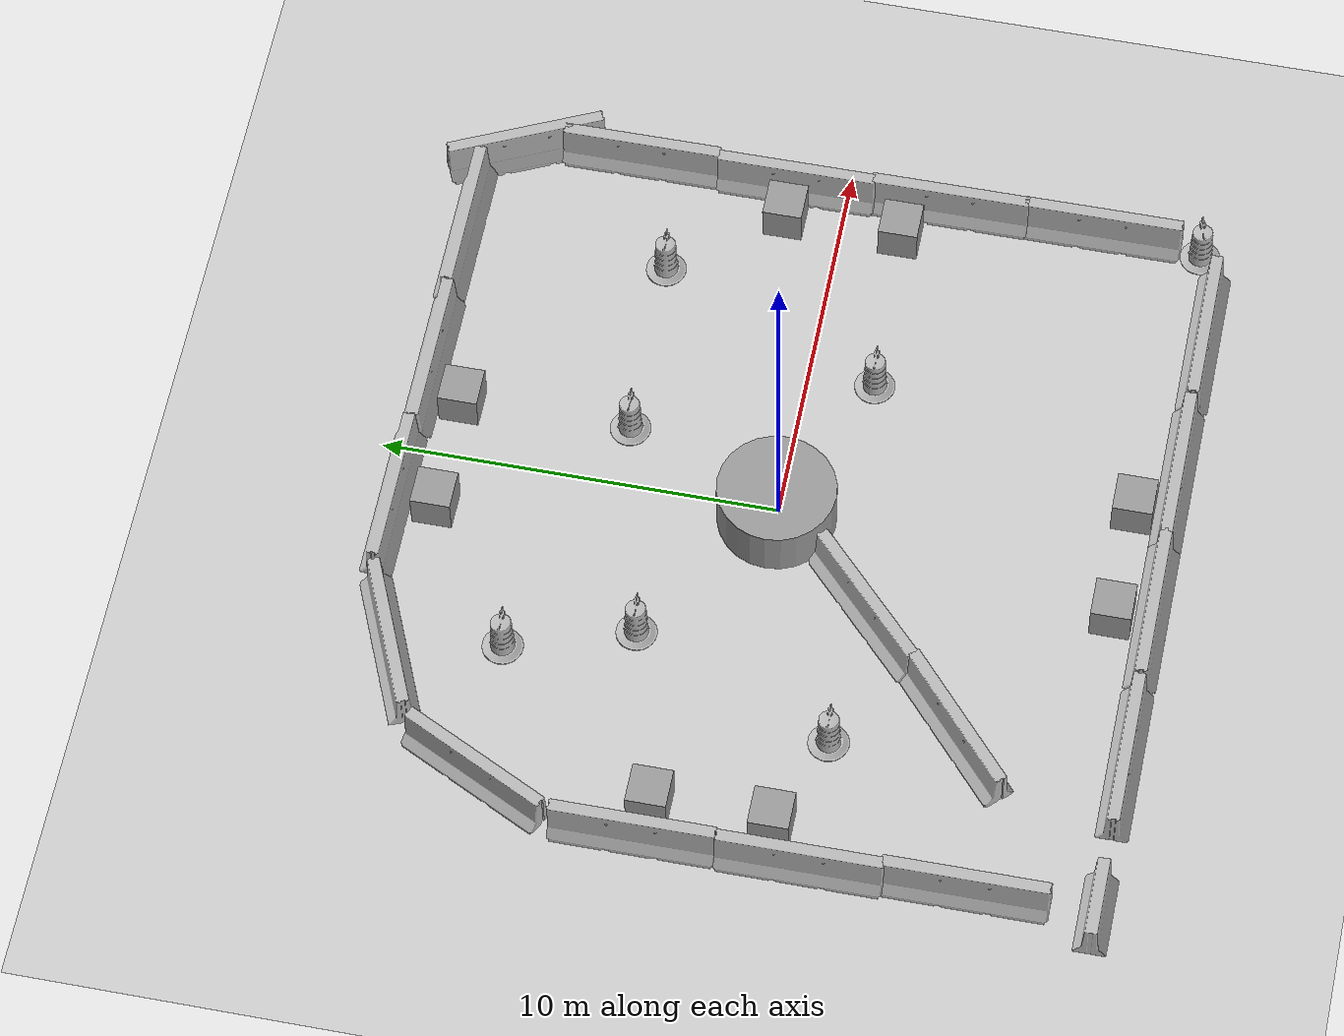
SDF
<sdf version="1.6">
 <world name="default">
  <light name="sun" type="directional">
   <pose>0 0 10 0 -0 0</pose>
   <diffuse>0.8 0.8 0.8 1</diffuse>
   <specular>0.2 0.2 0.2 1</specular>
   <attenuation>
    <range>1000</range>
    <constant>0.9</constant>
    <linear>0.01</linear>
    <quadratic>0.001</quadratic>
   </attenuation>
   <direction>-0.5 0.1 -0.9</direction>
  </light>
  <model name="ground_plane">
   <static>1</static>
   <link name="link">
    <collision name="collision">
     <geometry><plane><normal>0 0 1</normal><size>100 100</size></plane></geometry>
     <surface><friction><ode><mu>100</mu><mu2>50</mu2></ode></friction></surface>
    </collision>
    <visual name="visual">
     <cast_shadows>0</cast_shadows>
     <geometry><plane><normal>0 0 1</normal><size>100 100</size></plane></geometry>
     <material>
      <script><uri>file://media/materials/scripts/gazebo.material</uri><name>Gazebo/Grey</name></script>
     </material>
    </visual>
   </link>
  </model>
  <gravity>0 0 -9.8</gravity>
  <magnetic_field>6e-06 2.3e-05 -4.2e-05</magnetic_field>
  <atmosphere type="adiabatic"/>
  <physics name="default_physics" default="0" type="ode">
   <max_step_size>0.001</max_step_size>
   <real_time_factor>1</real_time_factor>
   <real_time_update_rate>1000</real_time_update_rate>
  </physics>
  <scene><ambient>0.4 0.4 0.4 1</ambient><background>0.7 0.7 0.7 1</background><shadows>1</shadows></scene>
  <spherical_coordinates>
   <surface_model>EARTH_WGS84</surface_model>
   <latitude_deg>0</latitude_deg>
   <longitude_deg>0</longitude_deg>
   <elevation>0</elevation>
   <heading_deg>0</heading_deg>
  </spherical_coordinates>
  <model name="jersey_barrier">
   <static>1</static>
   <link name="link">
    <visual name="visual">
     <geometry>
      <mesh><uri>model://jersey_barrier/meshes/jersey_barrier.dae</uri><scale>1 1 1</scale></mesh>
     </geometry>
    </visual>
    <collision name="upright">
     <pose>0 0 0.5715 0 -0 0</pose>
     <geometry><box><size>4.06542 0.3063 1.143</size></box></geometry>
    </collision>
    <collision name="base">
     <pose>0 0 0.032258 0 -0 0</pose>
     <geometry><box><size>4.06542 0.8107 0.064516</size></box></geometry>
    </collision>
    <collision name="base2">
     <pose>0 0 0.1 0 -0 0</pose>
     <geometry><box><size>4.06542 0.65 0.1</size></box></geometry>
    </collision>
    <collision name="base3">
     <pose>0 0 0.2 0 -0 0</pose>
     <geometry><box><size>4.06542 0.5 0.1</size></box></geometry>
    </collision>
    <collision name="left-angle">
     <pose>0 -0.224 0.2401 0.9 -0 0</pose>
     <geometry><box><size>4.06542 0.5 0.064516</size></box></geometry>
    </collision>
    <collision name="right-angle">
     <pose>0 0.224 0.2401 -0.9 0 0</pose>
     <geometry><box><size>4.06542 0.5 0.064516</size></box></geometry>
    </collision>
   </link>
   <pose>-5.69058 8.51039 0 0 -0 0.403569</pose>
  </model>
  <model name="jersey_barrier_clone">
   <static>1</static>
   <link name="link">
    <visual name="visual">
     <geometry>
      <mesh><uri>model://jersey_barrier/meshes/jersey_barrier.dae</uri><scale>1 1 1</scale></mesh>
     </geometry>
    </visual>
    <collision name="upright">
     <pose>0 0 0.5715 0 -0 0</pose>
     <geometry><box><size>4.06542 0.3063 1.143</size></box></geometry>
    </collision>
    <collision name="base">
     <pose>0 0 0.032258 0 -0 0</pose>
     <geometry><box><size>4.06542 0.8107 0.064516</size></box></geometry>
    </collision>
    <collision name="base2">
     <pose>0 0 0.1 0 -0 0</pose>
     <geometry><box><size>4.06542 0.65 0.1</size></box></geometry>
    </collision>
    <collision name="base3">
     <pose>0 0 0.2 0 -0 0</pose>
     <geometry><box><size>4.06542 0.5 0.1</size></box></geometry>
    </collision>
    <collision name="left-angle">
     <pose>0 -0.224 0.2401 0.9 -0 0</pose>
     <geometry><box><size>4.06542 0.5 0.064516</size></box></geometry>
    </collision>
    <collision name="right-angle">
     <pose>0 0.224 0.2401 -0.9 0 0</pose>
     <geometry><box><size>4.06542 0.5 0.064516</size></box></geometry>
    </collision>
   </link>
   <pose>-1.65987 9.36075 0 0 -0 0</pose>
  </model>
  <model name="jersey_barrier_clone_0">
   <static>1</static>
   <link name="link">
    <visual name="visual">
     <geometry>
      <mesh><uri>model://jersey_barrier/meshes/jersey_barrier.dae</uri><scale>1 1 1</scale></mesh>
     </geometry>
    </visual>
    <collision name="upright">
     <pose>0 0 0.5715 0 -0 0</pose>
     <geometry><box><size>4.06542 0.3063 1.143</size></box></geometry>
    </collision>
    <collision name="base">
     <pose>0 0 0.032258 0 -0 0</pose>
     <geometry><box><size>4.06542 0.8107 0.064516</size></box></geometry>
    </collision>
    <collision name="base2">
     <pose>0 0 0.1 0 -0 0</pose>
     <geometry><box><size>4.06542 0.65 0.1</size></box></geometry>
    </collision>
    <collision name="base3">
     <pose>0 0 0.2 0 -0 0</pose>
     <geometry><box><size>4.06542 0.5 0.1</size></box></geometry>
    </collision>
    <collision name="left-angle">
     <pose>0 -0.224 0.2401 0.9 -0 0</pose>
     <geometry><box><size>4.06542 0.5 0.064516</size></box></geometry>
    </collision>
    <collision name="right-angle">
     <pose>0 0.224 0.2401 -0.9 0 0</pose>
     <geometry><box><size>4.06542 0.5 0.064516</size></box></geometry>
    </collision>
   </link>
   <pose>2.39773 9.29085 0 0 -0 0</pose>
  </model>
  <model name="jersey_barrier_clone_1">
   <static>1</static>
   <link name="link">
    <visual name="visual">
     <geometry>
      <mesh><uri>model://jersey_barrier/meshes/jersey_barrier.dae</uri><scale>1 1 1</scale></mesh>
     </geometry>
    </visual>
    <collision name="upright">
     <pose>0 0 0.5715 0 -0 0</pose>
     <geometry><box><size>4.06542 0.3063 1.143</size></box></geometry>
    </collision>
    <collision name="base">
     <pose>0 0 0.032258 0 -0 0</pose>
     <geometry><box><size>4.06542 0.8107 0.064516</size></box></geometry>
    </collision>
    <collision name="base2">
     <pose>0 0 0.1 0 -0 0</pose>
     <geometry><box><size>4.06542 0.65 0.1</size></box></geometry>
    </collision>
    <collision name="base3">
     <pose>0 0 0.2 0 -0 0</pose>
     <geometry><box><size>4.06542 0.5 0.1</size></box></geometry>
    </collision>
    <collision name="left-angle">
     <pose>0 -0.224 0.2401 0.9 -0 0</pose>
     <geometry><box><size>4.06542 0.5 0.064516</size></box></geometry>
    </collision>
    <collision name="right-angle">
     <pose>0 0.224 0.2401 -0.9 0 0</pose>
     <geometry><box><size>4.06542 0.5 0.064516</size></box></geometry>
    </collision>
   </link>
   <pose>6.45464 9.33993 0 0 -0 0</pose>
  </model>
  <model name="jersey_barrier_clone_3">
   <static>1</static>
   <link name="link">
    <visual name="visual">
     <geometry>
      <mesh><uri>model://jersey_barrier/meshes/jersey_barrier.dae</uri><scale>1 1 1</scale></mesh>
     </geometry>
    </visual>
    <collision name="upright">
     <pose>0 0 0.5715 0 -0 0</pose>
     <geometry><box><size>4.06542 0.3063 1.143</size></box></geometry>
    </collision>
    <collision name="base">
     <pose>0 0 0.032258 0 -0 0</pose>
     <geometry><box><size>4.06542 0.8107 0.064516</size></box></geometry>
    </collision>
    <collision name="base2">
     <pose>0 0 0.1 0 -0 0</pose>
     <geometry><box><size>4.06542 0.65 0.1</size></box></geometry>
    </collision>
    <collision name="base3">
     <pose>0 0 0.2 0 -0 0</pose>
     <geometry><box><size>4.06542 0.5 0.1</size></box></geometry>
    </collision>
    <collision name="left-angle">
     <pose>0 -0.224 0.2401 0.9 -0 0</pose>
     <geometry><box><size>4.06542 0.5 0.064516</size></box></geometry>
    </collision>
    <collision name="right-angle">
     <pose>0 0.224 0.2401 -0.9 0 0</pose>
     <geometry><box><size>4.06542 0.5 0.064516</size></box></geometry>
    </collision>
   </link>
   <pose>9.44656 5.35522 0 0 0 -1.56865</pose>
  </model>
  <model name="jersey_barrier_clone_3_clone">
   <static>1</static>
   <link name="link">
    <visual name="visual">
     <geometry>
      <mesh><uri>model://jersey_barrier/meshes/jersey_barrier.dae</uri><scale>1 1 1</scale></mesh>
     </geometry>
    </visual>
    <collision name="upright">
     <pose>0 0 0.5715 0 -0 0</pose>
     <geometry><box><size>4.06542 0.3063 1.143</size></box></geometry>
    </collision>
    <collision name="base">
     <pose>0 0 0.032258 0 -0 0</pose>
     <geometry><box><size>4.06542 0.8107 0.064516</size></box></geometry>
    </collision>
    <collision name="base2">
     <pose>0 0 0.1 0 -0 0</pose>
     <geometry><box><size>4.06542 0.65 0.1</size></box></geometry>
    </collision>
    <collision name="base3">
     <pose>0 0 0.2 0 -0 0</pose>
     <geometry><box><size>4.06542 0.5 0.1</size></box></geometry>
    </collision>
    <collision name="left-angle">
     <pose>0 -0.224 0.2401 0.9 -0 0</pose>
     <geometry><box><size>4.06542 0.5 0.064516</size></box></geometry>
    </collision>
    <collision name="right-angle">
     <pose>0 0.224 0.2401 -0.9 0 0</pose>
     <geometry><box><size>4.06542 0.5 0.064516</size></box></geometry>
    </collision>
   </link>
   <pose>9.3727 1.33119 0 0 0 -1.56865</pose>
  </model>
  <model name="jersey_barrier_clone_3_clone_0">
   <static>1</static>
   <link name="link">
    <visual name="visual">
     <geometry>
      <mesh><uri>model://jersey_barrier/meshes/jersey_barrier.dae</uri><scale>1 1 1</scale></mesh>
     </geometry>
    </visual>
    <collision name="upright">
     <pose>0 0 0.5715 0 -0 0</pose>
     <geometry><box><size>4.06542 0.3063 1.143</size></box></geometry>
    </collision>
    <collision name="base">
     <pose>0 0 0.032258 0 -0 0</pose>
     <geometry><box><size>4.06542 0.8107 0.064516</size></box></geometry>
    </collision>
    <collision name="base2">
     <pose>0 0 0.1 0 -0 0</pose>
     <geometry><box><size>4.06542 0.65 0.1</size></box></geometry>
    </collision>
    <collision name="base3">
     <pose>0 0 0.2 0 -0 0</pose>
     <geometry><box><size>4.06542 0.5 0.1</size></box></geometry>
    </collision>
    <collision name="left-angle">
     <pose>0 -0.224 0.2401 0.9 -0 0</pose>
     <geometry><box><size>4.06542 0.5 0.064516</size></box></geometry>
    </collision>
    <collision name="right-angle">
     <pose>0 0.224 0.2401 -0.9 0 0</pose>
     <geometry><box><size>4.06542 0.5 0.064516</size></box></geometry>
    </collision>
   </link>
   <pose>9.4315 -2.6268 0 0 0 -1.56865</pose>
  </model>
  <model name="jersey_barrier_clone_3_clone_1">
   <static>1</static>
   <link name="link">
    <visual name="visual">
     <geometry>
      <mesh><uri>model://jersey_barrier/meshes/jersey_barrier.dae</uri><scale>1 1 1</scale></mesh>
     </geometry>
    </visual>
    <collision name="upright">
     <pose>0 0 0.5715 0 -0 0</pose>
     <geometry><box><size>4.06542 0.3063 1.143</size></box></geometry>
    </collision>
    <collision name="base">
     <pose>0 0 0.032258 0 -0 0</pose>
     <geometry><box><size>4.06542 0.8107 0.064516</size></box></geometry>
    </collision>
    <collision name="base2">
     <pose>0 0 0.1 0 -0 0</pose>
     <geometry><box><size>4.06542 0.65 0.1</size></box></geometry>
    </collision>
    <collision name="base3">
     <pose>0 0 0.2 0 -0 0</pose>
     <geometry><box><size>4.06542 0.5 0.1</size></box></geometry>
    </collision>
    <collision name="left-angle">
     <pose>0 -0.224 0.2401 0.9 -0 0</pose>
     <geometry><box><size>4.06542 0.5 0.064516</size></box></geometry>
    </collision>
    <collision name="right-angle">
     <pose>0 0.224 0.2401 -0.9 0 0</pose>
     <geometry><box><size>4.06542 0.5 0.064516</size></box></geometry>
    </collision>
   </link>
   <pose>9.44969 -6.53485 0 0 0 -1.56865</pose>
  </model>
  <model name="jersey_barrier_clone_2_clone">
   <static>1</static>
   <link name="link">
    <visual name="visual">
     <geometry>
      <mesh><uri>model://jersey_barrier/meshes/jersey_barrier.dae</uri><scale>1 1 1</scale></mesh>
     </geometry>
    </visual>
    <collision name="upright">
     <pose>0 0 0.5715 0 -0 0</pose>
     <geometry><box><size>4.06542 0.3063 1.143</size></box></geometry>
    </collision>
    <collision name="base">
     <pose>0 0 0.032258 0 -0 0</pose>
     <geometry><box><size>4.06542 0.8107 0.064516</size></box></geometry>
    </collision>
    <collision name="base2">
     <pose>0 0 0.1 0 -0 0</pose>
     <geometry><box><size>4.06542 0.65 0.1</size></box></geometry>
    </collision>
    <collision name="base3">
     <pose>0 0 0.2 0 -0 0</pose>
     <geometry><box><size>4.06542 0.5 0.1</size></box></geometry>
    </collision>
    <collision name="left-angle">
     <pose>0 -0.224 0.2401 0.9 -0 0</pose>
     <geometry><box><size>4.06542 0.5 0.064516</size></box></geometry>
    </collision>
    <collision name="right-angle">
     <pose>0 0.224 0.2401 -0.9 0 0</pose>
     <geometry><box><size>4.06542 0.5 0.064516</size></box></geometry>
    </collision>
   </link>
   <pose>6.70657 -9.54347 0 0 -0 0</pose>
  </model>
  <model name="jersey_barrier_clone_2_clone_0">
   <static>1</static>
   <link name="link">
    <visual name="visual">
     <geometry>
      <mesh><uri>model://jersey_barrier/meshes/jersey_barrier.dae</uri><scale>1 1 1</scale></mesh>
     </geometry>
    </visual>
    <collision name="upright">
     <pose>0 0 0.5715 0 -0 0</pose>
     <geometry><box><size>4.06542 0.3063 1.143</size></box></geometry>
    </collision>
    <collision name="base">
     <pose>0 0 0.032258 0 -0 0</pose>
     <geometry><box><size>4.06542 0.8107 0.064516</size></box></geometry>
    </collision>
    <collision name="base2">
     <pose>0 0 0.1 0 -0 0</pose>
     <geometry><box><size>4.06542 0.65 0.1</size></box></geometry>
    </collision>
    <collision name="base3">
     <pose>0 0 0.2 0 -0 0</pose>
     <geometry><box><size>4.06542 0.5 0.1</size></box></geometry>
    </collision>
    <collision name="left-angle">
     <pose>0 -0.224 0.2401 0.9 -0 0</pose>
     <geometry><box><size>4.06542 0.5 0.064516</size></box></geometry>
    </collision>
    <collision name="right-angle">
     <pose>0 0.224 0.2401 -0.9 0 0</pose>
     <geometry><box><size>4.06542 0.5 0.064516</size></box></geometry>
    </collision>
   </link>
   <pose>2.59616 -9.50928 0 0 -0 0</pose>
  </model>
  <model name="jersey_barrier_clone_2_clone_1">
   <static>1</static>
   <link name="link">
    <visual name="visual">
     <geometry>
      <mesh><uri>model://jersey_barrier/meshes/jersey_barrier.dae</uri><scale>1 1 1</scale></mesh>
     </geometry>
    </visual>
    <collision name="upright">
     <pose>0 0 0.5715 0 -0 0</pose>
     <geometry><box><size>4.06542 0.3063 1.143</size></box></geometry>
    </collision>
    <collision name="base">
     <pose>0 0 0.032258 0 -0 0</pose>
     <geometry><box><size>4.06542 0.8107 0.064516</size></box></geometry>
    </collision>
    <collision name="base2">
     <pose>0 0 0.1 0 -0 0</pose>
     <geometry><box><size>4.06542 0.65 0.1</size></box></geometry>
    </collision>
    <collision name="base3">
     <pose>0 0 0.2 0 -0 0</pose>
     <geometry><box><size>4.06542 0.5 0.1</size></box></geometry>
    </collision>
    <collision name="left-angle">
     <pose>0 -0.224 0.2401 0.9 -0 0</pose>
     <geometry><box><size>4.06542 0.5 0.064516</size></box></geometry>
    </collision>
    <collision name="right-angle">
     <pose>0 0.224 0.2401 -0.9 0 0</pose>
     <geometry><box><size>4.06542 0.5 0.064516</size></box></geometry>
    </collision>
   </link>
   <pose>-1.33414 -9.50852 0 0 -0 0</pose>
  </model>
  <model name="jersey_barrier_clone_2_clone_2">
   <static>1</static>
   <link name="link">
    <visual name="visual">
     <geometry>
      <mesh><uri>model://jersey_barrier/meshes/jersey_barrier.dae</uri><scale>1 1 1</scale></mesh>
     </geometry>
    </visual>
    <collision name="upright">
     <pose>0 0 0.5715 0 -0 0</pose>
     <geometry><box><size>4.06542 0.3063 1.143</size></box></geometry>
    </collision>
    <collision name="base">
     <pose>0 0 0.032258 0 -0 0</pose>
     <geometry><box><size>4.06542 0.8107 0.064516</size></box></geometry>
    </collision>
    <collision name="base2">
     <pose>0 0 0.1 0 -0 0</pose>
     <geometry><box><size>4.06542 0.65 0.1</size></box></geometry>
    </collision>
    <collision name="base3">
     <pose>0 0 0.2 0 -0 0</pose>
     <geometry><box><size>4.06542 0.5 0.1</size></box></geometry>
    </collision>
    <collision name="left-angle">
     <pose>0 -0.224 0.2401 0.9 -0 0</pose>
     <geometry><box><size>4.06542 0.5 0.064516</size></box></geometry>
    </collision>
    <collision name="right-angle">
     <pose>0 0.224 0.2401 -0.9 0 0</pose>
     <geometry><box><size>4.06542 0.5 0.064516</size></box></geometry>
    </collision>
   </link>
   <pose>-5.44605 -9.49634 0 0 -0 0</pose>
  </model>
  <model name="jersey_barrier_clone_3_clone_1_clone">
   <static>1</static>
   <link name="link">
    <visual name="visual">
     <geometry>
      <mesh><uri>model://jersey_barrier/meshes/jersey_barrier.dae</uri><scale>1 1 1</scale></mesh>
     </geometry>
    </visual>
    <collision name="upright">
     <pose>0 0 0.5715 0 -0 0</pose>
     <geometry><box><size>4.06542 0.3063 1.143</size></box></geometry>
    </collision>
    <collision name="base">
     <pose>0 0 0.032258 0 -0 0</pose>
     <geometry><box><size>4.06542 0.8107 0.064516</size></box></geometry>
    </collision>
    <collision name="base2">
     <pose>0 0 0.1 0 -0 0</pose>
     <geometry><box><size>4.06542 0.65 0.1</size></box></geometry>
    </collision>
    <collision name="base3">
     <pose>0 0 0.2 0 -0 0</pose>
     <geometry><box><size>4.06542 0.5 0.1</size></box></geometry>
    </collision>
    <collision name="left-angle">
     <pose>0 -0.224 0.2401 0.9 -0 0</pose>
     <geometry><box><size>4.06542 0.5 0.064516</size></box></geometry>
    </collision>
    <collision name="right-angle">
     <pose>0 0.224 0.2401 -0.9 0 0</pose>
     <geometry><box><size>4.06542 0.5 0.064516</size></box></geometry>
    </collision>
   </link>
   <pose>-9.54289 -6.33149 0 0 0 -1.56865</pose>
  </model>
  <model name="jersey_barrier_clone_3_clone_1_clone_0">
   <static>1</static>
   <link name="link">
    <visual name="visual">
     <geometry>
      <mesh><uri>model://jersey_barrier/meshes/jersey_barrier.dae</uri><scale>1 1 1</scale></mesh>
     </geometry>
    </visual>
    <collision name="upright">
     <pose>0 0 0.5715 0 -0 0</pose>
     <geometry><box><size>4.06542 0.3063 1.143</size></box></geometry>
    </collision>
    <collision name="base">
     <pose>0 0 0.032258 0 -0 0</pose>
     <geometry><box><size>4.06542 0.8107 0.064516</size></box></geometry>
    </collision>
    <collision name="base2">
     <pose>0 0 0.1 0 -0 0</pose>
     <geometry><box><size>4.06542 0.65 0.1</size></box></geometry>
    </collision>
    <collision name="base3">
     <pose>0 0 0.2 0 -0 0</pose>
     <geometry><box><size>4.06542 0.5 0.1</size></box></geometry>
    </collision>
    <collision name="left-angle">
     <pose>0 -0.224 0.2401 0.9 -0 0</pose>
     <geometry><box><size>4.06542 0.5 0.064516</size></box></geometry>
    </collision>
    <collision name="right-angle">
     <pose>0 0.224 0.2401 -0.9 0 0</pose>
     <geometry><box><size>4.06542 0.5 0.064516</size></box></geometry>
    </collision>
   </link>
   <pose>-9.6221 -2.35336 0 0 0 -1.56865</pose>
  </model>
  <model name="jersey_barrier_clone_3_clone_1_clone_1">
   <static>1</static>
   <link name="link">
    <visual name="visual">
     <geometry>
      <mesh><uri>model://jersey_barrier/meshes/jersey_barrier.dae</uri><scale>1 1 1</scale></mesh>
     </geometry>
    </visual>
    <collision name="upright">
     <pose>0 0 0.5715 0 -0 0</pose>
     <geometry><box><size>4.06542 0.3063 1.143</size></box></geometry>
    </collision>
    <collision name="base">
     <pose>0 0 0.032258 0 -0 0</pose>
     <geometry><box><size>4.06542 0.8107 0.064516</size></box></geometry>
    </collision>
    <collision name="base2">
     <pose>0 0 0.1 0 -0 0</pose>
     <geometry><box><size>4.06542 0.65 0.1</size></box></geometry>
    </collision>
    <collision name="base3">
     <pose>0 0 0.2 0 -0 0</pose>
     <geometry><box><size>4.06542 0.5 0.1</size></box></geometry>
    </collision>
    <collision name="left-angle">
     <pose>0 -0.224 0.2401 0.9 -0 0</pose>
     <geometry><box><size>4.06542 0.5 0.064516</size></box></geometry>
    </collision>
    <collision name="right-angle">
     <pose>0 0.224 0.2401 -0.9 0 0</pose>
     <geometry><box><size>4.06542 0.5 0.064516</size></box></geometry>
    </collision>
   </link>
   <pose>-9.58952 1.69745 0 0 0 -1.56865</pose>
  </model>
  <model name="jersey_barrier_clone_3_clone_1_clone_2">
   <static>1</static>
   <link name="link">
    <visual name="visual">
     <geometry>
      <mesh><uri>model://jersey_barrier/meshes/jersey_barrier.dae</uri><scale>1 1 1</scale></mesh>
     </geometry>
    </visual>
    <collision name="upright">
     <pose>0 0 0.5715 0 -0 0</pose>
     <geometry><box><size>4.06542 0.3063 1.143</size></box></geometry>
    </collision>
    <collision name="base">
     <pose>0 0 0.032258 0 -0 0</pose>
     <geometry><box><size>4.06542 0.8107 0.064516</size></box></geometry>
    </collision>
    <collision name="base2">
     <pose>0 0 0.1 0 -0 0</pose>
     <geometry><box><size>4.06542 0.65 0.1</size></box></geometry>
    </collision>
    <collision name="base3">
     <pose>0 0 0.2 0 -0 0</pose>
     <geometry><box><size>4.06542 0.5 0.1</size></box></geometry>
    </collision>
    <collision name="left-angle">
     <pose>0 -0.224 0.2401 0.9 -0 0</pose>
     <geometry><box><size>4.06542 0.5 0.064516</size></box></geometry>
    </collision>
    <collision name="right-angle">
     <pose>0 0.224 0.2401 -0.9 0 0</pose>
     <geometry><box><size>4.06542 0.5 0.064516</size></box></geometry>
    </collision>
   </link>
   <pose>-8.67609 5.71375 0 0 0 -2.03081</pose>
  </model>
  <model name="Construction Barrel">
   <link name="link">
    <inertial>
     <pose>0 0 0.4 0 -0 0</pose>
     <mass>1000</mass>
     <inertia><ixx>51.2096</ixx><iyy>51.2096</iyy><izz>25</izz><ixy>0</ixy><ixz>0</ixz><iyz>0</iyz></inertia>
    </inertial>
    <collision name="collision">
     <geometry>
      <mesh><uri>model://construction_barrel/meshes/construction_barrel.dae</uri><scale>1 1 1</scale></mesh>
     </geometry>
    </collision>
    <visual name="visual">
     <geometry>
      <mesh><uri>model://construction_barrel/meshes/construction_barrel.dae</uri><scale>1 1 1</scale></mesh>
     </geometry>
    </visual>
   </link>
   <pose>1.64169 4.07159 -1e-06 3e-06 -3e-06 -0.001112</pose>
  </model>
  <model name="Construction Barrel_0">
   <link name="link">
    <inertial>
     <pose>0 0 0.4 0 -0 0</pose>
     <mass>1000</mass>
     <inertia><ixx>51.2096</ixx><iyy>51.2096</iyy><izz>25</izz><ixy>0</ixy><ixz>0</ixz><iyz>0</iyz></inertia>
    </inertial>
    <collision name="collision">
     <geometry>
      <mesh><uri>model://construction_barrel/meshes/construction_barrel.dae</uri><scale>1 1 1</scale></mesh>
     </geometry>
    </collision>
    <visual name="visual">
     <geometry>
      <mesh><uri>model://construction_barrel/meshes/construction_barrel.dae</uri><scale>1 1 1</scale></mesh>
     </geometry>
    </visual>
   </link>
   <pose>-4.02184 2.75409 -2e-06 1e-06 -4e-06 -0.001176</pose>
  </model>
  <model name="Construction Barrel_1">
   <link name="link">
    <inertial>
     <pose>0 0 0.4 0 -0 0</pose>
     <mass>1000</mass>
     <inertia><ixx>51.2096</ixx><iyy>51.2096</iyy><izz>25</izz><ixy>0</ixy><ixz>0</ixz><iyz>0</iyz></inertia>
    </inertial>
    <collision name="collision">
     <geometry>
      <mesh><uri>model://construction_barrel/meshes/construction_barrel.dae</uri><scale>1 1 1</scale></mesh>
     </geometry>
    </collision>
    <visual name="visual">
     <geometry>
      <mesh><uri>model://construction_barrel/meshes/construction_barrel.dae</uri><scale>1 1 1</scale></mesh>
     </geometry>
    </visual>
   </link>
   <pose>3.99786 -1.67236 -2e-06 1e-06 -4e-06 -0.001176</pose>
  </model>
  <model name="Construction Barrel_2">
   <link name="link">
    <inertial>
     <pose>0 0 0.4 0 -0 0</pose>
     <mass>1000</mass>
     <inertia><ixx>51.2096</ixx><iyy>51.2096</iyy><izz>25</izz><ixy>0</ixy><ixz>0</ixz><iyz>0</iyz></inertia>
    </inertial>
    <collision name="collision">
     <geometry>
      <mesh><uri>model://construction_barrel/meshes/construction_barrel.dae</uri><scale>1 1 1</scale></mesh>
     </geometry>
    </collision>
    <visual name="visual">
     <geometry>
      <mesh><uri>model://construction_barrel/meshes/construction_barrel.dae</uri><scale>1 1 1</scale></mesh>
     </geometry>
    </visual>
   </link>
   <pose>-5.01473 5.87222 0 1e-06 1e-06 -0.001166</pose>
  </model>
  <model name="Construction Barrel_3">
   <link name="link">
    <inertial>
     <pose>0 0 0.4 0 -0 0</pose>
     <mass>1000</mass>
     <inertia><ixx>51.2096</ixx><iyy>51.2096</iyy><izz>25</izz><ixy>0</ixy><ixz>0</ixz><iyz>0</iyz></inertia>
    </inertial>
    <collision name="collision">
     <geometry>
      <mesh><uri>model://construction_barrel/meshes/construction_barrel.dae</uri><scale>1 1 1</scale></mesh>
     </geometry>
    </collision>
    <visual name="visual">
     <geometry>
      <mesh><uri>model://construction_barrel/meshes/construction_barrel.dae</uri><scale>1 1 1</scale></mesh>
     </geometry>
    </visual>
   </link>
   <pose>9.32403 -9.078 -2e-06 -1.1e-05 -5e-06 0.268435</pose>
  </model>
  <model name="Construction Barrel_4">
   <link name="link">
    <inertial>
     <pose>0 0 0.4 0 -0 0</pose>
     <mass>1000</mass>
     <inertia><ixx>51.2096</ixx><iyy>51.2096</iyy><izz>25</izz><ixy>0</ixy><ixz>0</ixz><iyz>0</iyz></inertia>
    </inertial>
    <collision name="collision">
     <geometry>
      <mesh><uri>model://construction_barrel/meshes/construction_barrel.dae</uri><scale>1 1 1</scale></mesh>
     </geometry>
    </collision>
    <visual name="visual">
     <geometry>
      <mesh><uri>model://construction_barrel/meshes/construction_barrel.dae</uri><scale>1 1 1</scale></mesh>
     </geometry>
    </visual>
   </link>
   <pose>-6.13223 -2.39908 -2e-06 2e-06 7e-06 -0.001189</pose>
  </model>
  <model name="Construction Barrel_5">
   <link name="link">
    <inertial>
     <pose>0 0 0.4 0 -0 0</pose>
     <mass>1000</mass>
     <inertia><ixx>51.2096</ixx><iyy>51.2096</iyy><izz>25</izz><ixy>0</ixy><ixz>0</ixz><iyz>0</iyz></inertia>
    </inertial>
    <collision name="collision">
     <geometry>
      <mesh><uri>model://construction_barrel/meshes/construction_barrel.dae</uri><scale>1 1 1</scale></mesh>
     </geometry>
    </collision>
    <visual name="visual">
     <geometry>
      <mesh><uri>model://construction_barrel/meshes/construction_barrel.dae</uri><scale>1 1 1</scale></mesh>
     </geometry>
    </visual>
   </link>
   <pose>6.42785 4.13703 -3e-06 -7e-06 -6e-06 -0.001195</pose>
  </model>
  <model name="unit_box_0">
   <pose>8.43013 -1.51835 0.499995 1e-05 -0 0</pose>
   <link name="link">
    <inertial>
     <mass>1</mass>
     <inertia>
      <ixx>0.166667</ixx>
      <ixy>0</ixy>
      <ixz>0</ixz>
      <iyy>0.166667</iyy>
      <iyz>0</iyz>
      <izz>0.166667</izz>
     </inertia>
    </inertial>
    <collision name="collision"><geometry><box><size>1 1 1</size></box></geometry></collision>
    <visual name="visual">
     <geometry><box><size>1 1 1</size></box></geometry>
     <material>
      <script><name>Gazebo/Grey</name><uri>file://media/materials/scripts/gazebo.material</uri></script>
     </material>
    </visual>
   </link>
  </model>
  <model name="unit_box_1">
   <pose>8.44764 1.45301 0.499995 1e-05 -0 0</pose>
   <link name="link">
    <inertial>
     <mass>1</mass>
     <inertia>
      <ixx>0.166667</ixx>
      <ixy>0</ixy>
      <ixz>0</ixz>
      <iyy>0.166667</iyy>
      <iyz>0</iyz>
      <izz>0.166667</izz>
     </inertia>
    </inertial>
    <collision name="collision"><geometry><box><size>1 1 1</size></box></geometry></collision>
    <visual name="visual">
     <geometry><box><size>1 1 1</size></box></geometry>
     <material>
      <script><name>Gazebo/Grey</name><uri>file://media/materials/scripts/gazebo.material</uri></script>
     </material>
    </visual>
   </link>
  </model>
  <model name="unit_box_2">
   <pose>-1.45742 -8.55002 0.499995 0 1e-05 0</pose>
   <link name="link">
    <inertial>
     <mass>1</mass>
     <inertia>
      <ixx>0.166667</ixx>
      <ixy>0</ixy>
      <ixz>0</ixz>
      <iyy>0.166667</iyy>
      <iyz>0</iyz>
      <izz>0.166667</izz>
     </inertia>
    </inertial>
    <collision name="collision"><geometry><box><size>1 1 1</size></box></geometry></collision>
    <visual name="visual">
     <geometry><box><size>1 1 1</size></box></geometry>
     <material>
      <script><name>Gazebo/Grey</name><uri>file://media/materials/scripts/gazebo.material</uri></script>
     </material>
    </visual>
   </link>
  </model>
  <model name="unit_box_3">
   <pose>1.56252 -8.59755 0.499995 0 1e-05 0</pose>
   <link name="link">
    <inertial>
     <mass>1</mass>
     <inertia>
      <ixx>0.166667</ixx>
      <ixy>0</ixy>
      <ixz>0</ixz>
      <iyy>0.166667</iyy>
      <iyz>0</iyz>
      <izz>0.166667</izz>
     </inertia>
    </inertial>
    <collision name="collision"><geometry><box><size>1 1 1</size></box></geometry></collision>
    <visual name="visual">
     <geometry><box><size>1 1 1</size></box></geometry>
     <material>
      <script><name>Gazebo/Grey</name><uri>file://media/materials/scripts/gazebo.material</uri></script>
     </material>
    </visual>
   </link>
  </model>
  <model name="unit_box_4">
   <pose>-8.60737 -1.47961 0.499995 0 1e-05 0</pose>
   <link name="link">
    <inertial>
     <mass>1</mass>
     <inertia>
      <ixx>0.166667</ixx>
      <ixy>0</ixy>
      <ixz>0</ixz>
      <iyy>0.166667</iyy>
      <iyz>0</iyz>
      <izz>0.166667</izz>
     </inertia>
    </inertial>
    <collision name="collision"><geometry><box><size>1 1 1</size></box></geometry></collision>
    <visual name="visual">
     <geometry><box><size>1 1 1</size></box></geometry>
     <material>
      <script><name>Gazebo/Grey</name><uri>file://media/materials/scripts/gazebo.material</uri></script>
     </material>
    </visual>
   </link>
  </model>
  <model name="unit_box_5">
   <pose>-8.58046 1.48863 0.499995 0 1e-05 0</pose>
   <link name="link">
    <inertial>
     <mass>1</mass>
     <inertia>
      <ixx>0.166667</ixx>
      <ixy>0</ixy>
      <ixz>0</ixz>
      <iyy>0.166667</iyy>
      <iyz>0</iyz>
      <izz>0.166667</izz>
     </inertia>
    </inertial>
    <collision name="collision"><geometry><box><size>1 1 1</size></box></geometry></collision>
    <visual name="visual">
     <geometry><box><size>1 1 1</size></box></geometry>
     <material>
      <script><name>Gazebo/Grey</name><uri>file://media/materials/scripts/gazebo.material</uri></script>
     </material>
    </visual>
   </link>
  </model>
  <model name="unit_box_6">
   <pose>1.51575 8.3171 0.499995 1e-05 -0 0</pose>
   <link name="link">
    <inertial>
     <mass>1</mass>
     <inertia>
      <ixx>0.166667</ixx>
      <ixy>0</ixy>
      <ixz>0</ixz>
      <iyy>0.166667</iyy>
      <iyz>0</iyz>
      <izz>0.166667</izz>
     </inertia>
    </inertial>
    <collision name="collision"><geometry><box><size>1 1 1</size></box></geometry></collision>
    <visual name="visual">
     <geometry><box><size>1 1 1</size></box></geometry>
     <material>
      <script><name>Gazebo/Grey</name><uri>file://media/materials/scripts/gazebo.material</uri></script>
     </material>
    </visual>
   </link>
  </model>
  <model name="unit_box_7">
   <pose>-1.49863 8.32437 0.499995 0 1e-05 0</pose>
   <link name="link">
    <inertial>
     <mass>1</mass>
     <inertia>
      <ixx>0.166667</ixx>
      <ixy>0</ixy>
      <ixz>0</ixz>
      <iyy>0.166667</iyy>
      <iyz>0</iyz>
      <izz>0.166667</izz>
     </inertia>
    </inertial>
    <collision name="collision"><geometry><box><size>1 1 1</size></box></geometry></collision>
    <visual name="visual">
     <geometry><box><size>1 1 1</size></box></geometry>
     <material>
      <script><name>Gazebo/Grey</name><uri>file://media/materials/scripts/gazebo.material</uri></script>
     </material>
    </visual>
   </link>
  </model>
  <model name="unit_cylinder_0_0">
   <link name="link">
    <inertial>
     <mass>12.2827</mass>
     <inertia><ixx>8.76109</ixx><ixy>0</ixy><ixz>0</ixz><iyy>8.76109</iyy><iyz>0</iyz><izz>13.5671</izz></inertia>
    </inertial>
    <visual name="visual">
     <geometry><cylinder><radius>1.48632</radius><length>1.38998</length></cylinder></geometry>
     <material>
      <script><name>Gazebo/Grey</name><uri>file://media/materials/scripts/gazebo.material</uri></script>
      <ambient>0.3 0.3 0.3 1</ambient>
      <diffuse>0.7 0.7 0.7 1</diffuse>
      <specular>0.01 0.01 0.01 1</specular>
      <emissive>0 0 0 1</emissive>
     </material>
    </visual>
    <collision name="collision">
     <geometry><cylinder><radius>1.48632</radius><length>1.38998</length></cylinder></geometry>
     <surface>
      <friction>
       <ode><mu>1</mu><mu2>1</mu2><fdir1>0 0 0</fdir1><slip1>0</slip1><slip2>0</slip2></ode>
       <torsional>
        <coefficient>1</coefficient>
        <patch_radius>0</patch_radius>
        <surface_radius>0</surface_radius>
        <use_patch_radius>1</use_patch_radius>
        <ode><slip>0</slip></ode>
       </torsional>
      </friction>
      <bounce><restitution_coefficient>0</restitution_coefficient><threshold>1e+06</threshold></bounce>
      <contact>
       <collide_without_contact>0</collide_without_contact>
       <collide_without_contact_bitmask>1</collide_without_contact_bitmask>
       <collide_bitmask>1</collide_bitmask>
       <ode>
        <soft_cfm>0</soft_cfm>
        <soft_erp>0.2</soft_erp>
        <kp>1e+13</kp>
        <kd>1</kd>
        <max_vel>0.01</max_vel>
        <min_depth>0</min_depth>
       </ode>
       <bullet>
        <split_impulse>1</split_impulse>
        <split_impulse_penetration_threshold>-0.01</split_impulse_penetration_threshold>
        <soft_cfm>0</soft_cfm>
        <soft_erp>0.2</soft_erp>
        <kp>1e+13</kp>
        <kd>1</kd>
       </bullet>
      </contact>
     </surface>
    </collision>
   </link>
   <static>0</static>
   <pose>-0.168348 0.020865 0.69499 0 -0 0</pose>
  </model>
  <model name="jersey_barrier_0">
   <static>1</static>
   <link name="link">
    <visual name="visual">
     <geometry>
      <mesh><uri>model://jersey_barrier/meshes/jersey_barrier.dae</uri><scale>1 1 1</scale></mesh>
     </geometry>
    </visual>
    <collision name="upright">
     <pose>0 0 0.5715 0 -0 0</pose>
     <geometry><box><size>4.06542 0.3063 1.143</size></box></geometry>
    </collision>
    <collision name="base">
     <pose>0 0 0.032258 0 -0 0</pose>
     <geometry><box><size>4.06542 0.8107 0.064516</size></box></geometry>
    </collision>
    <collision name="base2">
     <pose>0 0 0.1 0 -0 0</pose>
     <geometry><box><size>4.06542 0.65 0.1</size></box></geometry>
    </collision>
    <collision name="base3">
     <pose>0 0 0.2 0 -0 0</pose>
     <geometry><box><size>4.06542 0.5 0.1</size></box></geometry>
    </collision>
    <collision name="left-angle">
     <pose>0 -0.224 0.2401 0.9 -0 0</pose>
     <geometry><box><size>4.06542 0.5 0.064516</size></box></geometry>
    </collision>
    <collision name="right-angle">
     <pose>0 0.224 0.2401 -0.9 0 0</pose>
     <geometry><box><size>4.06542 0.5 0.064516</size></box></geometry>
    </collision>
   </link>
   <pose>-2.48974 -2.65676 0 0 0 -2.38315</pose>
  </model>
  <model name="jersey_barrier_1">
   <static>1</static>
   <link name="link">
    <visual name="visual">
     <geometry>
      <mesh><uri>model://jersey_barrier/meshes/jersey_barrier.dae</uri><scale>1 1 1</scale></mesh>
     </geometry>
    </visual>
    <collision name="upright">
     <pose>0 0 0.5715 0 -0 0</pose>
     <geometry><box><size>4.06542 0.3063 1.143</size></box></geometry>
    </collision>
    <collision name="base">
     <pose>0 0 0.032258 0 -0 0</pose>
     <geometry><box><size>4.06542 0.8107 0.064516</size></box></geometry>
    </collision>
    <collision name="base2">
     <pose>0 0 0.1 0 -0 0</pose>
     <geometry><box><size>4.06542 0.65 0.1</size></box></geometry>
    </collision>
    <collision name="base3">
     <pose>0 0 0.2 0 -0 0</pose>
     <geometry><box><size>4.06542 0.5 0.1</size></box></geometry>
    </collision>
    <collision name="left-angle">
     <pose>0 -0.224 0.2401 0.9 -0 0</pose>
     <geometry><box><size>4.06542 0.5 0.064516</size></box></geometry>
    </collision>
    <collision name="right-angle">
     <pose>0 0.224 0.2401 -0.9 0 0</pose>
     <geometry><box><size>4.06542 0.5 0.064516</size></box></geometry>
    </collision>
   </link>
   <pose>-5.39825 -5.37861 0 0 0 -2.41915</pose>
  </model>
  <model name="jersey_barrier_5">
   <static>1</static>
   <link name="link">
    <visual name="visual">
     <geometry>
      <mesh><uri>model://jersey_barrier/meshes/jersey_barrier.dae</uri><scale>1 1 1</scale></mesh>
     </geometry>
    </visual>
    <collision name="upright">
     <pose>0 0 0.5715 0 -0 0</pose>
     <geometry><box><size>1.62617 0.3063 1.143</size></box></geometry>
    </collision>
    <collision name="base">
     <pose>0 0 0.032258 0 -0 0</pose>
     <geometry><box><size>1.62617 0.8107 0.064516</size></box></geometry>
    </collision>
    <collision name="base2">
     <pose>0 0 0.1 0 -0 0</pose>
     <geometry><box><size>1.62617 0.65 0.1</size></box></geometry>
    </collision>
    <collision name="base3">
     <pose>0 0 0.2 0 -0 0</pose>
     <geometry><box><size>1.62617 0.5 0.1</size></box></geometry>
    </collision>
    <collision name="left-angle">
     <pose>0 -0.224 0.2401 0.9 -0 0</pose>
     <geometry><box><size>1.62617 0.5 0.064516</size></box></geometry>
    </collision>
    <collision name="right-angle">
     <pose>0 0.224 0.2401 -0.9 0 0</pose>
     <geometry><box><size>1.62617 0.5 0.064516</size></box></geometry>
    </collision>
   </link>
   <pose>9.13167 8.32402 0 0 0 -1.13489</pose>
  </model>
  <model name="jersey_barrier_2">
   <static>1</static>
   <link name="link">
    <visual name="visual">
     <geometry>
      <mesh><uri>model://jersey_barrier/meshes/jersey_barrier.dae</uri><scale>0.5 1 1</scale></mesh>
     </geometry>
    </visual>
    <collision name="upright">
     <pose>0 0 0.5715 0 -0 0</pose>
     <geometry><box><size>2.03271 0.3063 1.143</size></box></geometry>
    </collision>
    <collision name="base">
     <pose>0 0 0.032258 0 -0 0</pose>
     <geometry><box><size>2.03271 0.8107 0.064516</size></box></geometry>
    </collision>
    <collision name="base2">
     <pose>0 0 0.1 0 -0 0</pose>
     <geometry><box><size>2.03271 0.65 0.1</size></box></geometry>
    </collision>
    <collision name="base3">
     <pose>0 0 0.2 0 -0 0</pose>
     <geometry><box><size>2.03271 0.5 0.1</size></box></geometry>
    </collision>
    <collision name="left-angle">
     <pose>0 -0.224 0.2401 0.9 -0 0</pose>
     <geometry><box><size>2.03271 0.5 0.064516</size></box></geometry>
    </collision>
    <collision name="right-angle">
     <pose>0 0.224 0.2401 -0.9 0 0</pose>
     <geometry><box><size>2.03271 0.5 0.064516</size></box></geometry>
    </collision>
   </link>
   <pose>-9.51166 -9.45435 0 0 -0 0</pose>
  </model>
 </world>
</sdf>
